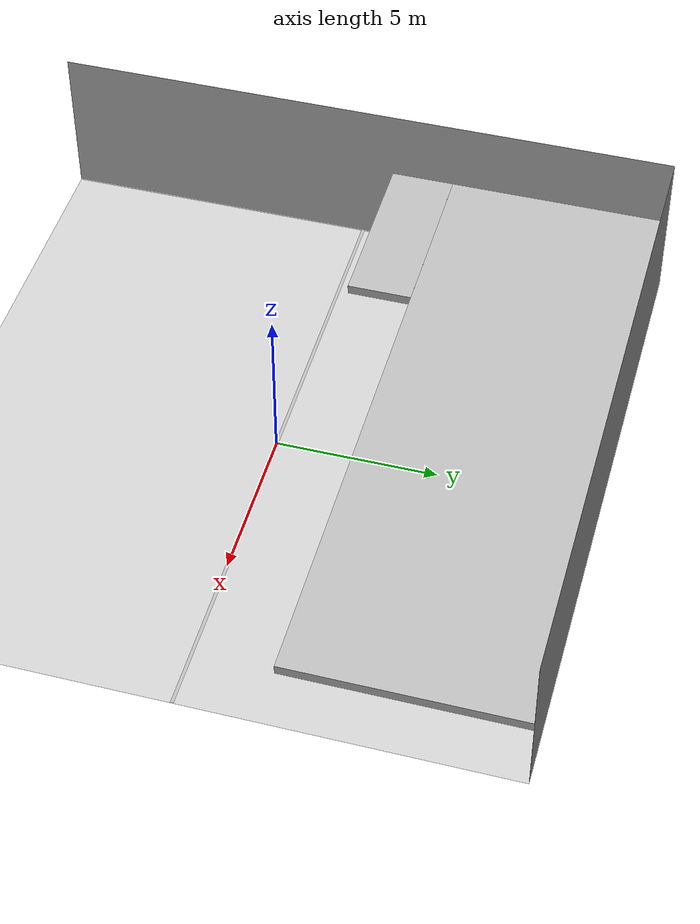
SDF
<?xml version="1.0"?>
<sdf version='1.6'>
  <model name='warehouse'>
    <static>1</static>
    <link name='ground_floor'>
      <pose frame=''>0 0 0 0 -0 0</pose>
      <collision name='ground_floor_collision'>
        <geometry>
          <plane>
            <normal>0 0 1</normal>
            <size>20 20</size>
          </plane>
        </geometry>
      </collision>
      <visual name='ground_floor_visual'>
        <geometry>
          <plane>
            <normal>0 0 1</normal>
            <size>20 20</size>
          </plane>
        </geometry>
        <material>
          <script>
            <uri>model://floor/materials/scripts</uri>
            <uri>model://floor/materials/textures</uri>
            <name>floor/Image</name>
          </script>
        </material>
      </visual>
    </link>
    <link name='top_floor'>
      <pose frame=''>0 6.5 2.55 0 -0 0</pose>
      <collision name='top_floor_collision'>
        <geometry>
          <box>
            <size>20 7 0.3</size>
          </box>
        </geometry>
      </collision>
      <collision name='top_floor_collision_1'>
        <pose>-7.25 -4.5 0.001 0 0 0</pose>
        <geometry>
          <box>
            <size>5.5 2 0.3</size>
          </box>
        </geometry>
      </collision>
      <visual name='top_floor_visual'>
        <geometry>
          <box>
            <size>20 7 0.3</size>
          </box>
        </geometry>
        <material>
          <script>
            <uri>model://floor/materials/scripts</uri>
            <uri>model://floor/materials/textures</uri>
            <name>floor/Image</name>
          </script>
        </material>
      </visual>
      <visual name='top_floor_visual_1'>
        <pose>-7.25 -4.5 0.001 0 0 0</pose>
        <geometry>
          <box>
            <size>5.5 2 0.3</size>
          </box>
        </geometry>
        <material>
          <script>
            <uri>model://floor/materials/scripts</uri>
            <uri>model://floor/materials/textures</uri>
            <name>floor/Image</name>
          </script>
        </material>
      </visual>
    </link>
    <link name='walls'>
      <visual name='front_wall'>
        <pose frame=''>-10 0 2.5 0 1.570796 0</pose>
        <geometry>
          <plane>
            <normal>0 0 1</normal>
            <size>5 20</size>
          </plane>
        </geometry>
      </visual>
      <visual name='right_wall'>
        <pose frame=''>0 10 2.5 0 1.570796 -1.570796</pose>
        <geometry>
          <plane>
            <normal>0 0 1</normal>
            <size>5 20</size>
          </plane>
        </geometry>

      </visual>
    </link>
    <link name='lines'>
      <visual name='green_1'>
        <pose frame=''>0 0 0.01 0 0 1.570796</pose>
        <geometry>
          <plane>
            <normal>0 0 1</normal>
            <size>0.1 20</size>
          </plane>
        </geometry>
      </visual>
    </link>
  </model>
</sdf>
